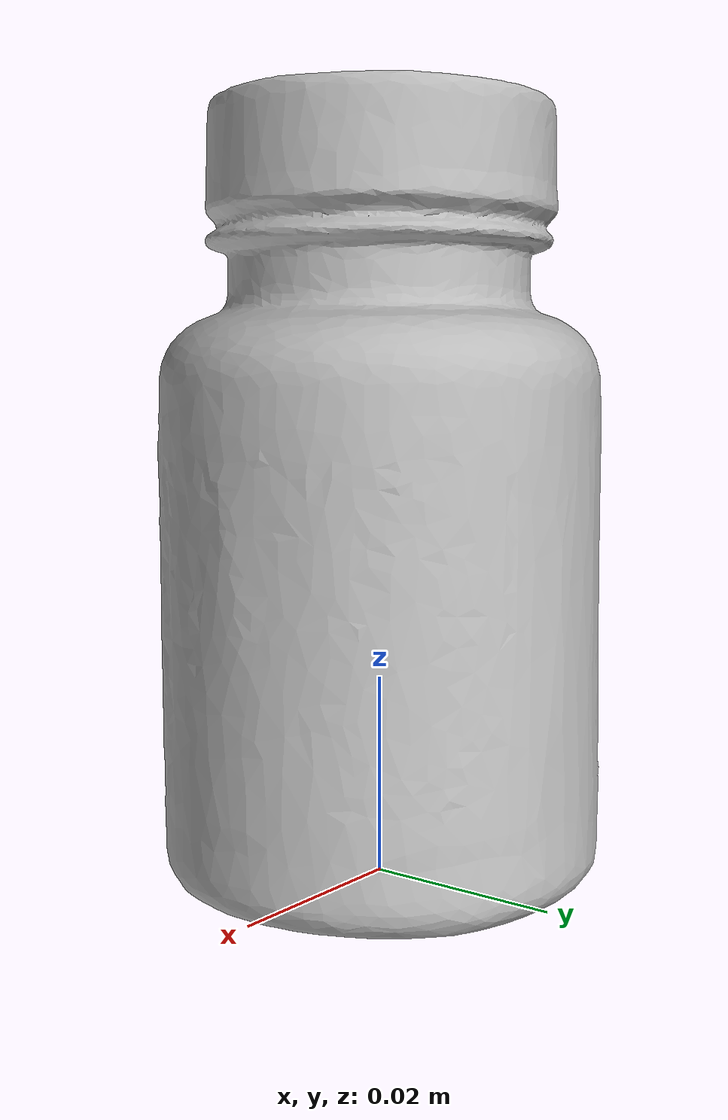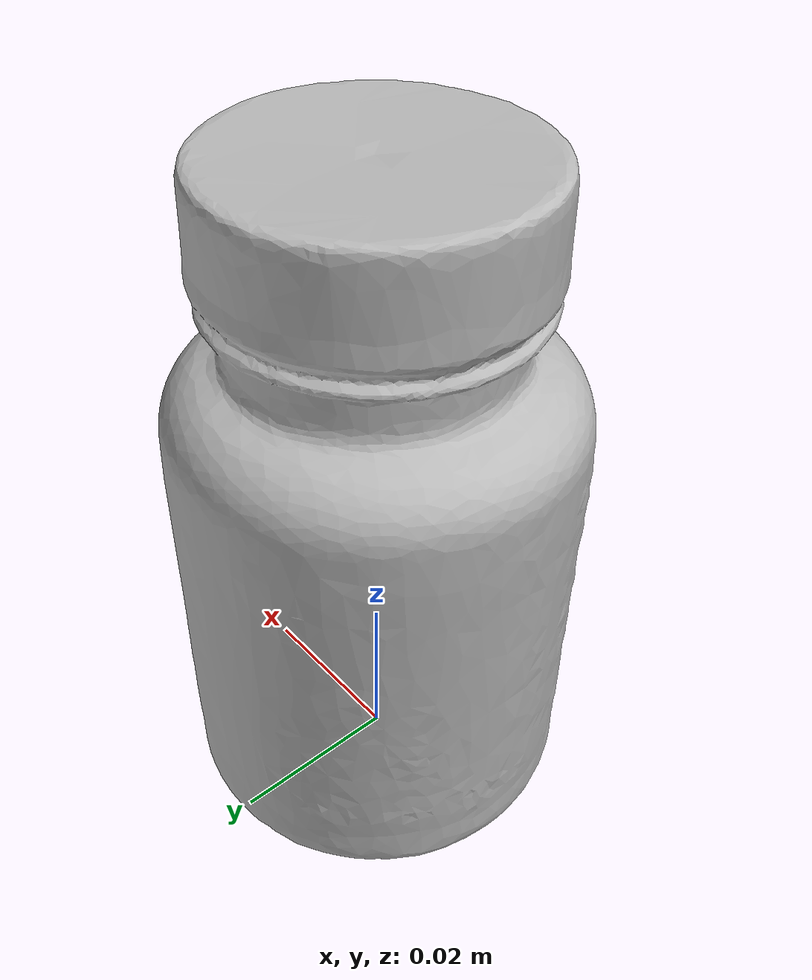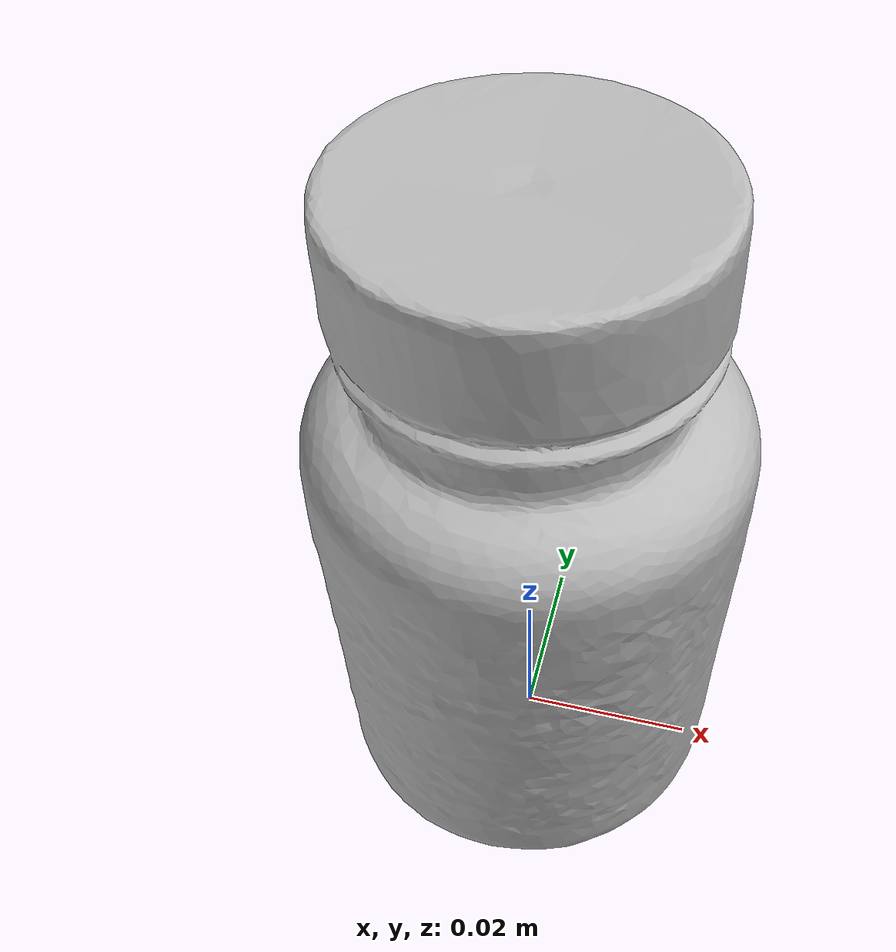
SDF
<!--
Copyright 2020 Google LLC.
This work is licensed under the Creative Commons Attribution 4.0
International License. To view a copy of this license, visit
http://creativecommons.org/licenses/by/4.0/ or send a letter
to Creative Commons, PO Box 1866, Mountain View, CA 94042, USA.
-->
<?xml version="1.0" ?>
<sdf version="1.6">
  <model name="TriStar_Products_PPC_Power_Pressure_Cooker_XL_in_Black">
    <link name="link_0">
      <visual name="visual">
        <geometry>
          <mesh>
            <uri>meshes/model.obj</uri>
          </mesh>
        </geometry>
      </visual>
      <collision name="collision_0">
        <geometry>
          <mesh>
            <uri>meshes/model.obj</uri>
          </mesh>
        </geometry>
      </collision>
    </link>
  </model>
</sdf>
